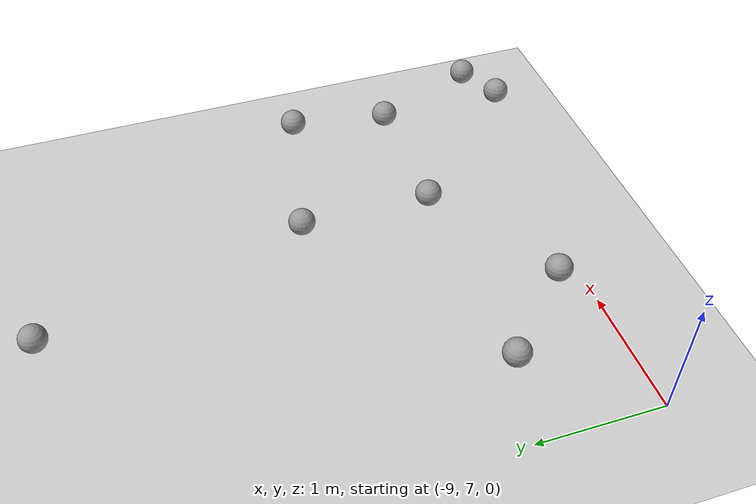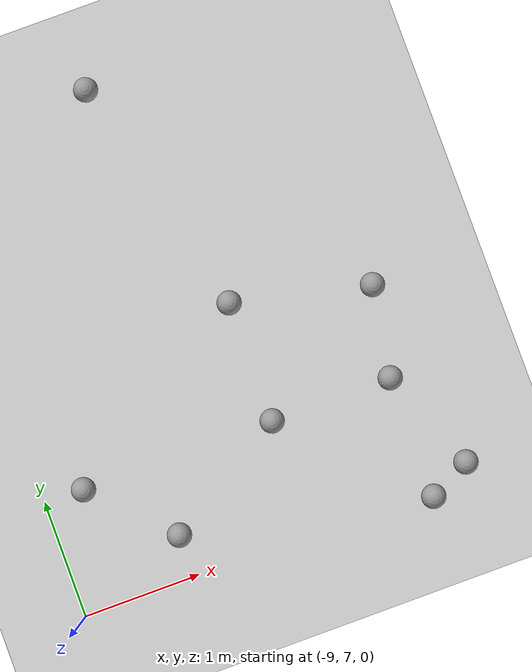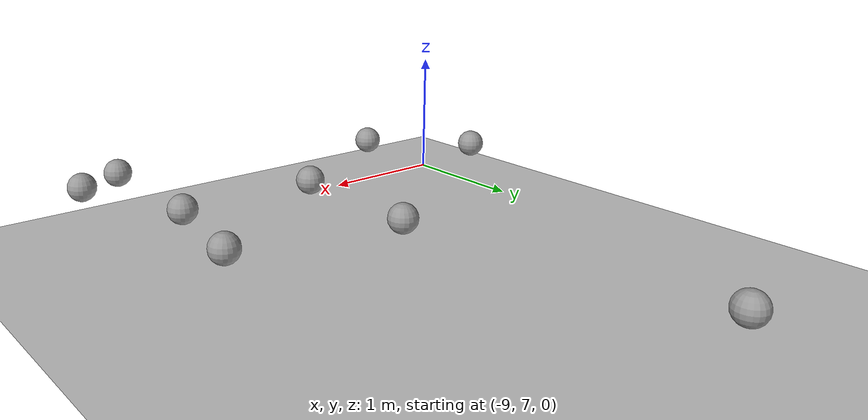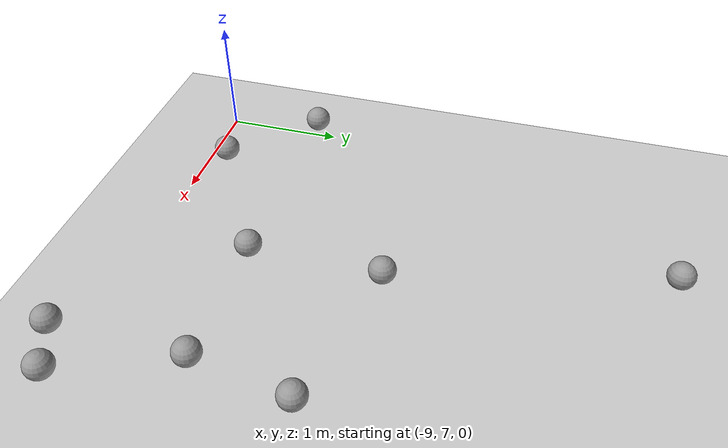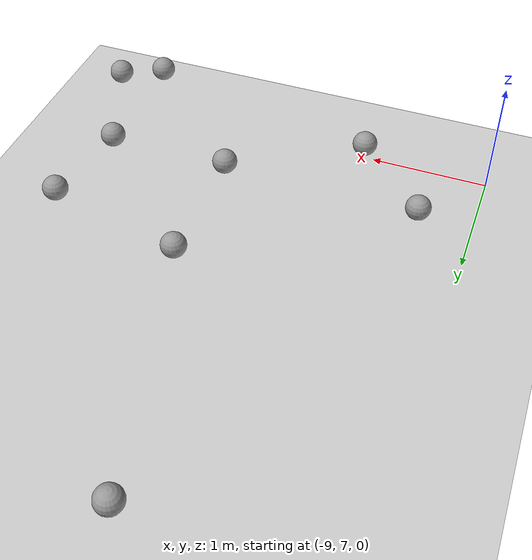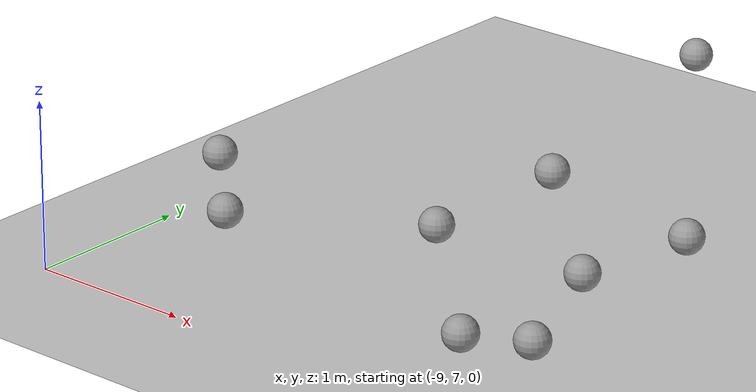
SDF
<sdf version="1.7">
 <world name="default">
  <model name="ground_plane">
   <static>1</static>
   <link name="link">
    <collision name="collision">
     <geometry><plane><normal>0 0 1</normal><size>100 100</size></plane></geometry>
     <surface>
      <contact><collide_bitmask>65535</collide_bitmask></contact>
      <friction><ode><mu>100</mu><mu2>50</mu2></ode></friction>
     </surface>
    </collision>
    <visual name="visual">
     <cast_shadows>0</cast_shadows>
     <geometry><plane><normal>0 0 1</normal><size>100 100</size></plane></geometry>
     <material>
      <script><uri>file://media/materials/scripts/gazebo.material</uri><name>Gazebo/Grey</name></script>
     </material>
    </visual>
   </link>
  </model>
  <model name="0.1unit_sphere_clone">
   <link name="link">
    <inertial>
     <mass>1</mass>
     <inertia><ixx>0.1</ixx><ixy>0</ixy><ixz>0</ixz><iyy>0.1</iyy><iyz>0</iyz><izz>0.1</izz></inertia>
    </inertial>
    <visual name="visual">
     <geometry><sphere><radius>0.1</radius></sphere></geometry>
     <material>
      <script><name>Gazebo/Grey</name><uri>file://media/materials/scripts/gazebo.material</uri></script>
      <shader type="pixel"><normal_map>__default__</normal_map></shader>
      <ambient>0.3 0.3 0.3 1</ambient>
      <diffuse>0.7 0.7 0.7 1</diffuse>
      <specular>0.01 0.01 0.01 1</specular>
      <emissive>0 0 0 1</emissive>
     </material>
    </visual>
    <collision name="collision">
     <geometry><sphere><radius>0.1</radius></sphere></geometry>
     <surface>
      <friction>
       <ode><mu>1</mu><mu2>1</mu2><fdir1>0 0 0</fdir1><slip1>0</slip1><slip2>0</slip2></ode>
       <torsional>
        <coefficient>1</coefficient>
        <patch_radius>0</patch_radius>
        <surface_radius>0</surface_radius>
        <use_patch_radius>1</use_patch_radius>
        <ode><slip>0</slip></ode>
       </torsional>
      </friction>
      <bounce><restitution_coefficient>0</restitution_coefficient><threshold>1e+06</threshold></bounce>
      <contact>
       <collide_without_contact>0</collide_without_contact>
       <collide_without_contact_bitmask>1</collide_without_contact_bitmask>
       <collide_bitmask>1</collide_bitmask>
       <ode>
        <soft_cfm>0</soft_cfm>
        <soft_erp>0.2</soft_erp>
        <kp>1e+13</kp>
        <kd>1</kd>
        <max_vel>0.01</max_vel>
        <min_depth>0</min_depth>
       </ode>
       <bullet>
        <split_impulse>1</split_impulse>
        <split_impulse_penetration_threshold>-0.01</split_impulse_penetration_threshold>
        <soft_cfm>0</soft_cfm>
        <soft_erp>0.2</soft_erp>
        <kp>1e+13</kp>
        <kd>1</kd>
       </bullet>
      </contact>
     </surface>
    </collision>
   </link>
   <static>0</static>
   <pose>-5.66593 7.16766 0.5 0 -0 0</pose>
  </model>
  <model name="0.1unit_sphere_clone_7">
   <link name="link">
    <inertial>
     <mass>1</mass>
     <inertia><ixx>0.1</ixx><ixy>0</ixy><ixz>0</ixz><iyy>0.1</iyy><iyz>0</iyz><izz>0.1</izz></inertia>
    </inertial>
    <visual name="visual">
     <geometry><sphere><radius>0.1</radius></sphere></geometry>
     <material>
      <script><name>Gazebo/Grey</name><uri>file://media/materials/scripts/gazebo.material</uri></script>
      <shader type="pixel"><normal_map>__default__</normal_map></shader>
      <ambient>0.3 0.3 0.3 1</ambient>
      <diffuse>0.7 0.7 0.7 1</diffuse>
      <specular>0.01 0.01 0.01 1</specular>
      <emissive>0 0 0 1</emissive>
     </material>
    </visual>
    <collision name="collision">
     <geometry><sphere><radius>0.1</radius></sphere></geometry>
     <surface>
      <friction>
       <ode><mu>1</mu><mu2>1</mu2><fdir1>0 0 0</fdir1><slip1>0</slip1><slip2>0</slip2></ode>
       <torsional>
        <coefficient>1</coefficient>
        <patch_radius>0</patch_radius>
        <surface_radius>0</surface_radius>
        <use_patch_radius>1</use_patch_radius>
        <ode><slip>0</slip></ode>
       </torsional>
      </friction>
      <bounce><restitution_coefficient>0</restitution_coefficient><threshold>1e+06</threshold></bounce>
      <contact>
       <collide_without_contact>0</collide_without_contact>
       <collide_without_contact_bitmask>1</collide_without_contact_bitmask>
       <collide_bitmask>1</collide_bitmask>
       <ode>
        <soft_cfm>0</soft_cfm>
        <soft_erp>0.2</soft_erp>
        <kp>1e+13</kp>
        <kd>1</kd>
        <max_vel>0.01</max_vel>
        <min_depth>0</min_depth>
       </ode>
       <bullet>
        <split_impulse>1</split_impulse>
        <split_impulse_penetration_threshold>-0.01</split_impulse_penetration_threshold>
        <soft_cfm>0</soft_cfm>
        <soft_erp>0.2</soft_erp>
        <kp>1e+13</kp>
        <kd>1</kd>
       </bullet>
      </contact>
     </surface>
    </collision>
   </link>
   <static>0</static>
   <pose>-6 7 0.5 0 -0 0</pose>
  </model>
  <model name="0.1unit_sphere_clone_11">
   <link name="link">
    <inertial>
     <mass>1</mass>
     <inertia><ixx>0.1</ixx><ixy>0</ixy><ixz>0</ixz><iyy>0.1</iyy><iyz>0</iyz><izz>0.1</izz></inertia>
    </inertial>
    <visual name="visual">
     <geometry><sphere><radius>0.1</radius></sphere></geometry>
     <material>
      <script><name>Gazebo/Grey</name><uri>file://media/materials/scripts/gazebo.material</uri></script>
      <shader type="pixel"><normal_map>__default__</normal_map></shader>
      <ambient>0.3 0.3 0.3 1</ambient>
      <diffuse>0.7 0.7 0.7 1</diffuse>
      <specular>0.01 0.01 0.01 1</specular>
      <emissive>0 0 0 1</emissive>
     </material>
    </visual>
    <collision name="collision">
     <geometry><sphere><radius>0.1</radius></sphere></geometry>
     <surface>
      <friction>
       <ode><mu>1</mu><mu2>1</mu2><fdir1>0 0 0</fdir1><slip1>0</slip1><slip2>0</slip2></ode>
       <torsional>
        <coefficient>1</coefficient>
        <patch_radius>0</patch_radius>
        <surface_radius>0</surface_radius>
        <use_patch_radius>1</use_patch_radius>
        <ode><slip>0</slip></ode>
       </torsional>
      </friction>
      <bounce><restitution_coefficient>0</restitution_coefficient><threshold>1e+06</threshold></bounce>
      <contact>
       <collide_without_contact>0</collide_without_contact>
       <collide_without_contact_bitmask>1</collide_without_contact_bitmask>
       <collide_bitmask>1</collide_bitmask>
       <ode>
        <soft_cfm>0</soft_cfm>
        <soft_erp>0.2</soft_erp>
        <kp>1e+13</kp>
        <kd>1</kd>
        <max_vel>0.01</max_vel>
        <min_depth>0</min_depth>
       </ode>
       <bullet>
        <split_impulse>1</split_impulse>
        <split_impulse_penetration_threshold>-0.01</split_impulse_penetration_threshold>
        <soft_cfm>0</soft_cfm>
        <soft_erp>0.2</soft_erp>
        <kp>1e+13</kp>
        <kd>1</kd>
       </bullet>
      </contact>
     </surface>
    </collision>
   </link>
   <static>0</static>
   <pose>-6 8 0.5 0 -0 0</pose>
  </model>
  <model name="0.1unit_sphere_clone_12">
   <link name="link">
    <inertial>
     <mass>1</mass>
     <inertia><ixx>0.1</ixx><ixy>0</ixy><ixz>0</ixz><iyy>0.1</iyy><iyz>0</iyz><izz>0.1</izz></inertia>
    </inertial>
    <visual name="visual">
     <geometry><sphere><radius>0.1</radius></sphere></geometry>
     <material>
      <script><name>Gazebo/Grey</name><uri>file://media/materials/scripts/gazebo.material</uri></script>
      <shader type="pixel"><normal_map>__default__</normal_map></shader>
      <ambient>0.3 0.3 0.3 1</ambient>
      <diffuse>0.7 0.7 0.7 1</diffuse>
      <specular>0.01 0.01 0.01 1</specular>
      <emissive>0 0 0 1</emissive>
     </material>
    </visual>
    <collision name="collision">
     <geometry><sphere><radius>0.1</radius></sphere></geometry>
     <surface>
      <friction>
       <ode><mu>1</mu><mu2>1</mu2><fdir1>0 0 0</fdir1><slip1>0</slip1><slip2>0</slip2></ode>
       <torsional>
        <coefficient>1</coefficient>
        <patch_radius>0</patch_radius>
        <surface_radius>0</surface_radius>
        <use_patch_radius>1</use_patch_radius>
        <ode><slip>0</slip></ode>
       </torsional>
      </friction>
      <bounce><restitution_coefficient>0</restitution_coefficient><threshold>1e+06</threshold></bounce>
      <contact>
       <collide_without_contact>0</collide_without_contact>
       <collide_without_contact_bitmask>1</collide_without_contact_bitmask>
       <collide_bitmask>1</collide_bitmask>
       <ode>
        <soft_cfm>0</soft_cfm>
        <soft_erp>0.2</soft_erp>
        <kp>1e+13</kp>
        <kd>1</kd>
        <max_vel>0.01</max_vel>
        <min_depth>0</min_depth>
       </ode>
       <bullet>
        <split_impulse>1</split_impulse>
        <split_impulse_penetration_threshold>-0.01</split_impulse_penetration_threshold>
        <soft_cfm>0</soft_cfm>
        <soft_erp>0.2</soft_erp>
        <kp>1e+13</kp>
        <kd>1</kd>
       </bullet>
      </contact>
     </surface>
    </collision>
   </link>
   <static>0</static>
   <pose>-8.59317 8 0.5 0 -0 0</pose>
  </model>
  <model name="0.1unit_sphere_clone_13">
   <link name="link">
    <inertial>
     <mass>1</mass>
     <inertia><ixx>0.1</ixx><ixy>0</ixy><ixz>0</ixz><iyy>0.1</iyy><iyz>0</iyz><izz>0.1</izz></inertia>
    </inertial>
    <visual name="visual">
     <geometry><sphere><radius>0.1</radius></sphere></geometry>
     <material>
      <script><name>Gazebo/Grey</name><uri>file://media/materials/scripts/gazebo.material</uri></script>
      <shader type="pixel"><normal_map>__default__</normal_map></shader>
      <ambient>0.3 0.3 0.3 1</ambient>
      <diffuse>0.7 0.7 0.7 1</diffuse>
      <specular>0.01 0.01 0.01 1</specular>
      <emissive>0 0 0 1</emissive>
     </material>
    </visual>
    <collision name="collision">
     <geometry><sphere><radius>0.1</radius></sphere></geometry>
     <surface>
      <friction>
       <ode><mu>1</mu><mu2>1</mu2><fdir1>0 0 0</fdir1><slip1>0</slip1><slip2>0</slip2></ode>
       <torsional>
        <coefficient>1</coefficient>
        <patch_radius>0</patch_radius>
        <surface_radius>0</surface_radius>
        <use_patch_radius>1</use_patch_radius>
        <ode><slip>0</slip></ode>
       </torsional>
      </friction>
      <bounce><restitution_coefficient>0</restitution_coefficient><threshold>1e+06</threshold></bounce>
      <contact>
       <collide_without_contact>0</collide_without_contact>
       <collide_without_contact_bitmask>1</collide_without_contact_bitmask>
       <collide_bitmask>1</collide_bitmask>
       <ode>
        <soft_cfm>0</soft_cfm>
        <soft_erp>0.2</soft_erp>
        <kp>1e+13</kp>
        <kd>1</kd>
        <max_vel>0.01</max_vel>
        <min_depth>0</min_depth>
       </ode>
       <bullet>
        <split_impulse>1</split_impulse>
        <split_impulse_penetration_threshold>-0.01</split_impulse_penetration_threshold>
        <soft_cfm>0</soft_cfm>
        <soft_erp>0.2</soft_erp>
        <kp>1e+13</kp>
        <kd>1</kd>
       </bullet>
      </contact>
     </surface>
    </collision>
   </link>
   <static>0</static>
   <pose>-5.87568 8.7451 0.5 0 -0 0</pose>
  </model>
  <model name="0.1unit_sphere_clone_16">
   <link name="link">
    <inertial>
     <mass>1</mass>
     <inertia><ixx>0.1</ixx><ixy>0</ixy><ixz>0</ixz><iyy>0.1</iyy><iyz>0</iyz><izz>0.1</izz></inertia>
    </inertial>
    <visual name="visual">
     <geometry><sphere><radius>0.1</radius></sphere></geometry>
     <material>
      <script><name>Gazebo/Grey</name><uri>file://media/materials/scripts/gazebo.material</uri></script>
      <shader type="pixel"><normal_map>__default__</normal_map></shader>
      <ambient>0.3 0.3 0.3 1</ambient>
      <diffuse>0.7 0.7 0.7 1</diffuse>
      <specular>0.01 0.01 0.01 1</specular>
      <emissive>0 0 0 1</emissive>
     </material>
    </visual>
    <collision name="collision">
     <geometry><sphere><radius>0.1</radius></sphere></geometry>
     <surface>
      <friction>
       <ode><mu>1</mu><mu2>1</mu2><fdir1>0 0 0</fdir1><slip1>0</slip1><slip2>0</slip2></ode>
       <torsional>
        <coefficient>1</coefficient>
        <patch_radius>0</patch_radius>
        <surface_radius>0</surface_radius>
        <use_patch_radius>1</use_patch_radius>
        <ode><slip>0</slip></ode>
       </torsional>
      </friction>
      <bounce><restitution_coefficient>0</restitution_coefficient><threshold>1e+06</threshold></bounce>
      <contact>
       <collide_without_contact>0</collide_without_contact>
       <collide_without_contact_bitmask>1</collide_without_contact_bitmask>
       <collide_bitmask>1</collide_bitmask>
       <ode>
        <soft_cfm>0</soft_cfm>
        <soft_erp>0.2</soft_erp>
        <kp>1e+13</kp>
        <kd>1</kd>
        <max_vel>0.01</max_vel>
        <min_depth>0</min_depth>
       </ode>
       <bullet>
        <split_impulse>1</split_impulse>
        <split_impulse_penetration_threshold>-0.01</split_impulse_penetration_threshold>
        <soft_cfm>0</soft_cfm>
        <soft_erp>0.2</soft_erp>
        <kp>1e+13</kp>
        <kd>1</kd>
       </bullet>
      </contact>
     </surface>
    </collision>
   </link>
   <static>0</static>
   <pose>-8 7.40207 0.5 0 -0 0</pose>
  </model>
  <model name="0.1unit_sphere_clone_17">
   <link name="link">
    <inertial>
     <mass>1</mass>
     <inertia><ixx>0.1</ixx><ixy>0</ixy><ixz>0</ixz><iyy>0.1</iyy><iyz>0</iyz><izz>0.1</izz></inertia>
    </inertial>
    <visual name="visual">
     <geometry><sphere><radius>0.1</radius></sphere></geometry>
     <material>
      <script><name>Gazebo/Grey</name><uri>file://media/materials/scripts/gazebo.material</uri></script>
      <shader type="pixel"><normal_map>__default__</normal_map></shader>
      <ambient>0.3 0.3 0.3 1</ambient>
      <diffuse>0.7 0.7 0.7 1</diffuse>
      <specular>0.01 0.01 0.01 1</specular>
      <emissive>0 0 0 1</emissive>
     </material>
    </visual>
    <collision name="collision">
     <geometry><sphere><radius>0.1</radius></sphere></geometry>
     <surface>
      <friction>
       <ode><mu>1</mu><mu2>1</mu2><fdir1>0 0 0</fdir1><slip1>0</slip1><slip2>0</slip2></ode>
       <torsional>
        <coefficient>1</coefficient>
        <patch_radius>0</patch_radius>
        <surface_radius>0</surface_radius>
        <use_patch_radius>1</use_patch_radius>
        <ode><slip>0</slip></ode>
       </torsional>
      </friction>
      <bounce><restitution_coefficient>0</restitution_coefficient><threshold>1e+06</threshold></bounce>
      <contact>
       <collide_without_contact>0</collide_without_contact>
       <collide_without_contact_bitmask>1</collide_without_contact_bitmask>
       <collide_bitmask>1</collide_bitmask>
       <ode>
        <soft_cfm>0</soft_cfm>
        <soft_erp>0.2</soft_erp>
        <kp>1e+13</kp>
        <kd>1</kd>
        <max_vel>0.01</max_vel>
        <min_depth>0</min_depth>
       </ode>
       <bullet>
        <split_impulse>1</split_impulse>
        <split_impulse_penetration_threshold>-0.01</split_impulse_penetration_threshold>
        <soft_cfm>0</soft_cfm>
        <soft_erp>0.2</soft_erp>
        <kp>1e+13</kp>
        <kd>1</kd>
       </bullet>
      </contact>
     </surface>
    </collision>
   </link>
   <static>0</static>
   <pose>-7 9 0.5 0 -0 0</pose>
  </model>
  <model name="0.1unit_sphere_clone_18">
   <link name="link">
    <inertial>
     <mass>1</mass>
     <inertia><ixx>0.1</ixx><ixy>0</ixy><ixz>0</ixz><iyy>0.1</iyy><iyz>0</iyz><izz>0.1</izz></inertia>
    </inertial>
    <visual name="visual">
     <geometry><sphere><radius>0.1</radius></sphere></geometry>
     <material>
      <script><name>Gazebo/Grey</name><uri>file://media/materials/scripts/gazebo.material</uri></script>
      <shader type="pixel"><normal_map>__default__</normal_map></shader>
      <ambient>0.3 0.3 0.3 1</ambient>
      <diffuse>0.7 0.7 0.7 1</diffuse>
      <specular>0.01 0.01 0.01 1</specular>
      <emissive>0 0 0 1</emissive>
     </material>
    </visual>
    <collision name="collision">
     <geometry><sphere><radius>0.1</radius></sphere></geometry>
     <surface>
      <friction>
       <ode><mu>1</mu><mu2>1</mu2><fdir1>0 0 0</fdir1><slip1>0</slip1><slip2>0</slip2></ode>
       <torsional>
        <coefficient>1</coefficient>
        <patch_radius>0</patch_radius>
        <surface_radius>0</surface_radius>
        <use_patch_radius>1</use_patch_radius>
        <ode><slip>0</slip></ode>
       </torsional>
      </friction>
      <bounce><restitution_coefficient>0</restitution_coefficient><threshold>1e+06</threshold></bounce>
      <contact>
       <collide_without_contact>0</collide_without_contact>
       <collide_without_contact_bitmask>1</collide_without_contact_bitmask>
       <collide_bitmask>1</collide_bitmask>
       <ode>
        <soft_cfm>0</soft_cfm>
        <soft_erp>0.2</soft_erp>
        <kp>1e+13</kp>
        <kd>1</kd>
        <max_vel>0.01</max_vel>
        <min_depth>0</min_depth>
       </ode>
       <bullet>
        <split_impulse>1</split_impulse>
        <split_impulse_penetration_threshold>-0.01</split_impulse_penetration_threshold>
        <soft_cfm>0</soft_cfm>
        <soft_erp>0.2</soft_erp>
        <kp>1e+13</kp>
        <kd>1</kd>
       </bullet>
      </contact>
     </surface>
    </collision>
   </link>
   <static>0</static>
   <pose>-7 8 0.5 0 -0 0</pose>
  </model>
  <model name="0.1unit_sphere_clone_49">
   <link name="link">
    <inertial>
     <mass>1</mass>
     <inertia><ixx>0.1</ixx><ixy>0</ixy><ixz>0</ixz><iyy>0.1</iyy><iyz>0</iyz><izz>0.1</izz></inertia>
    </inertial>
    <visual name="visual">
     <geometry><sphere><radius>0.1</radius></sphere></geometry>
     <material>
      <script><name>Gazebo/Grey</name><uri>file://media/materials/scripts/gazebo.material</uri></script>
      <shader type="pixel"><normal_map>__default__</normal_map></shader>
      <ambient>0.3 0.3 0.3 1</ambient>
      <diffuse>0.7 0.7 0.7 1</diffuse>
      <specular>0.01 0.01 0.01 1</specular>
      <emissive>0 0 0 1</emissive>
     </material>
    </visual>
    <collision name="collision">
     <geometry><sphere><radius>0.1</radius></sphere></geometry>
     <surface>
      <friction>
       <ode><mu>1</mu><mu2>1</mu2><fdir1>0 0 0</fdir1><slip1>0</slip1><slip2>0</slip2></ode>
       <torsional>
        <coefficient>1</coefficient>
        <patch_radius>0</patch_radius>
        <surface_radius>0</surface_radius>
        <use_patch_radius>1</use_patch_radius>
        <ode><slip>0</slip></ode>
       </torsional>
      </friction>
      <bounce><restitution_coefficient>0</restitution_coefficient><threshold>1e+06</threshold></bounce>
      <contact>
       <collide_without_contact>0</collide_without_contact>
       <collide_without_contact_bitmask>1</collide_without_contact_bitmask>
       <collide_bitmask>1</collide_bitmask>
       <ode>
        <soft_cfm>0</soft_cfm>
        <soft_erp>0.2</soft_erp>
        <kp>1e+13</kp>
        <kd>1</kd>
        <max_vel>0.01</max_vel>
        <min_depth>0</min_depth>
       </ode>
       <bullet>
        <split_impulse>1</split_impulse>
        <split_impulse_penetration_threshold>-0.01</split_impulse_penetration_threshold>
        <soft_cfm>0</soft_cfm>
        <soft_erp>0.2</soft_erp>
        <kp>1e+13</kp>
        <kd>1</kd>
       </bullet>
      </contact>
     </surface>
    </collision>
   </link>
   <static>0</static>
   <pose>-7.49608 11 0.5 0 -0 0</pose>
  </model>
 </world>
</sdf>
